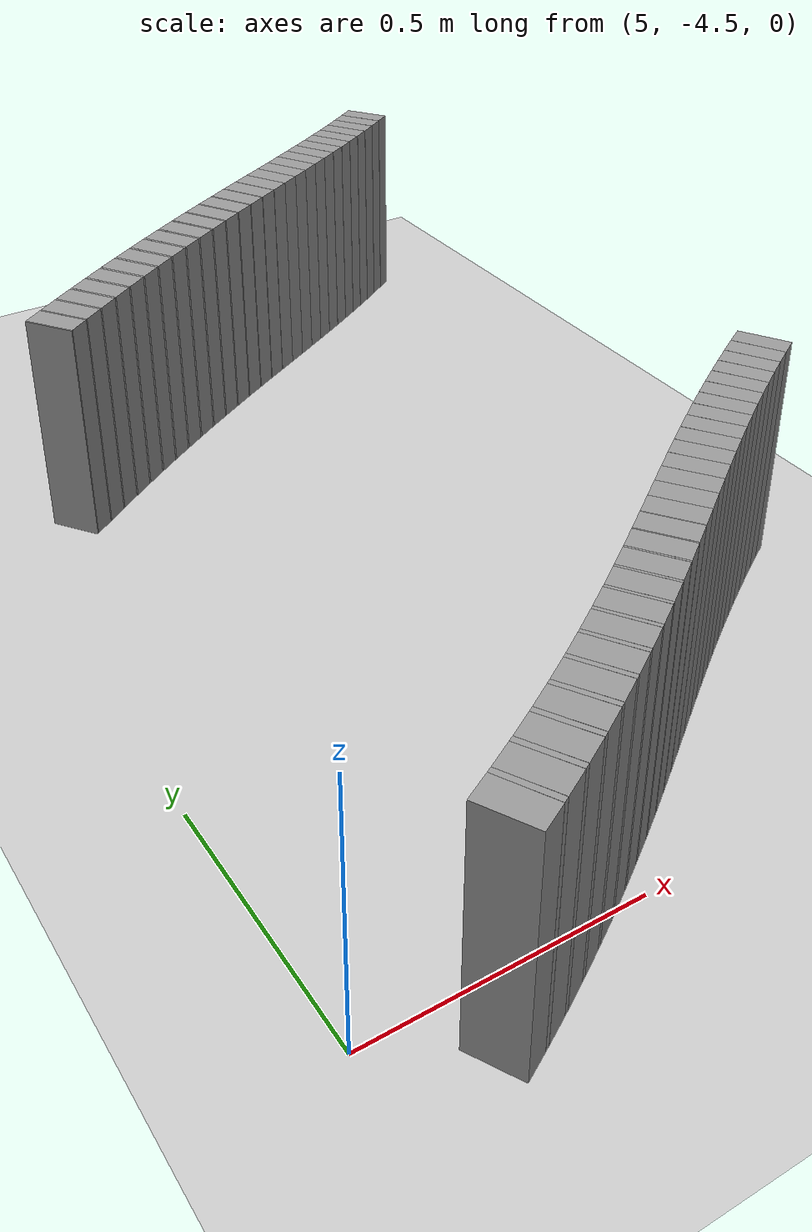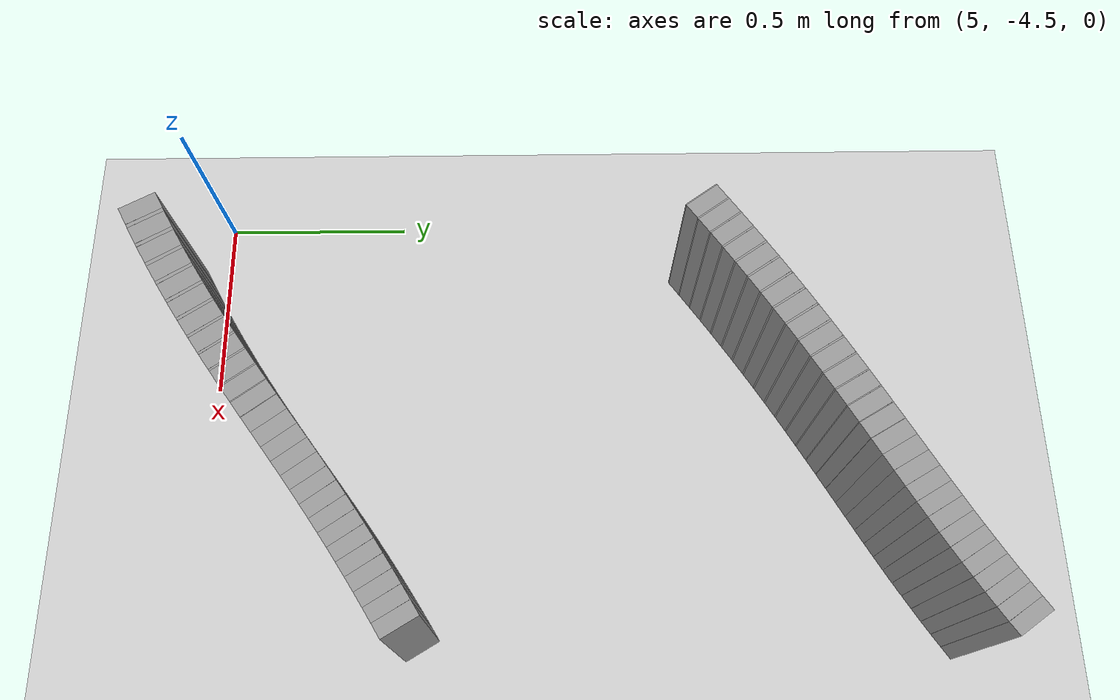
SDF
<sdf version="1.6">
 <world name="default">
  <include><uri>model://ground_plane</uri></include>
  <include><uri>model://sun</uri></include>
  <model name="wall_609_outward">
   <static>true</static>
   <link name="link">
    <collision name="collision">
     <geometry><box><size>0.002786222382187062 0.1 0.45</size></box></geometry>
    </collision>
    <visual name="visual">
     <geometry><box><size>0.002786222382187062 0.1 0.45</size></box></geometry>
     <material>
      <script><uri>file://media/materials/scripts/gazebo.material</uri><name>Gazebo/Gray</name></script>
     </material>
    </visual>
   </link>
   <pose>5.148489608580732 -3.1809714530120807 0.225 0 0 0.6229016369766011</pose>
  </model>
  <model name="wall_610_outward">
   <static>true</static>
   <link name="link">
    <collision name="collision">
     <geometry><box><size>0.045386893060723424 0.1 0.45</size></box></geometry>
    </collision>
    <visual name="visual">
     <geometry><box><size>0.045386893060723424 0.1 0.45</size></box></geometry>
     <material>
      <script><uri>file://media/materials/scripts/gazebo.material</uri><name>Gazebo/Gray</name></script>
     </material>
    </visual>
   </link>
   <pose>5.168083137573724 -3.166962323344757 0.225 0 0 0.6205797829050987</pose>
  </model>
  <model name="wall_611_outward">
   <static>true</static>
   <link name="link">
    <collision name="collision">
     <geometry><box><size>0.0035250302114483143 0.1 0.45</size></box></geometry>
    </collision>
    <visual name="visual">
     <geometry><box><size>0.0035250302114483143 0.1 0.45</size></box></geometry>
     <material>
      <script><uri>file://media/materials/scripts/gazebo.material</uri><name>Gazebo/Gray</name></script>
     </material>
    </visual>
   </link>
   <pose>5.18798208048395 -3.1527452285128454 0.225 0 0 0.6176422535041844</pose>
  </model>
  <model name="wall_612_outward">
   <static>true</static>
   <link name="link">
    <collision name="collision">
     <geometry><box><size>0.0454875068571517 0.1 0.45</size></box></geometry>
    </collision>
    <visual name="visual">
     <geometry><box><size>0.0454875068571517 0.1 0.45</size></box></geometry>
     <material>
      <script><uri>file://media/materials/scripts/gazebo.material</uri><name>Gazebo/Gray</name></script>
     </material>
    </visual>
   </link>
   <pose>5.207999331840912 -3.138607813626077 0.225 0 0 0.6147047241032968</pose>
  </model>
  <model name="wall_613_outward">
   <static>true</static>
   <link name="link">
    <collision name="collision">
     <geometry><box><size>0.0041267038170452915 0.1 0.45</size></box></geometry>
    </collision>
    <visual name="visual">
     <geometry><box><size>0.0041267038170452915 0.1 0.45</size></box></geometry>
     <material>
      <script><uri>file://media/materials/scripts/gazebo.material</uri><name>Gazebo/Gray</name></script>
     </material>
    </visual>
   </link>
   <pose>5.228269424324882 -3.1243069300550266 0.225 0 0 0.6112657974774508</pose>
  </model>
  <model name="wall_614_outward">
   <static>true</static>
   <link name="link">
    <collision name="collision">
     <geometry><box><size>0.045596323416679956 0.1 0.45</size></box></geometry>
    </collision>
    <visual name="visual">
     <geometry><box><size>0.045596323416679956 0.1 0.45</size></box></geometry>
     <material>
      <script><uri>file://media/materials/scripts/gazebo.material</uri><name>Gazebo/Gray</name></script>
     </material>
    </visual>
   </link>
   <pose>5.248673954747375 -3.11010307701274 0.225 0 0 0.6078268708517336</pose>
  </model>
  <model name="wall_615_outward">
   <static>true</static>
   <link name="link">
    <collision name="collision">
     <geometry><box><size>0.004612768524125091 0.1 0.45</size></box></geometry>
    </collision>
    <visual name="visual">
     <geometry><box><size>0.004612768524125091 0.1 0.45</size></box></geometry>
     <material>
      <script><uri>file://media/materials/scripts/gazebo.material</uri><name>Gazebo/Gray</name></script>
     </material>
    </visual>
   </link>
   <pose>5.2692870995730825 -3.0957735371798316 0.225 0 0 0.6039828876150469</pose>
  </model>
  <model name="wall_616_outward">
   <static>true</static>
   <link name="link">
    <collision name="collision">
     <geometry><box><size>0.04570440972219253 0.1 0.45</size></box></geometry>
    </collision>
    <visual name="visual">
     <geometry><box><size>0.04570440972219253 0.1 0.45</size></box></geometry>
     <material>
      <script><uri>file://media/materials/scripts/gazebo.material</uri><name>Gazebo/Gray</name></script>
     </material>
    </visual>
   </link>
   <pose>5.290044384757478 -3.0815577382347037 0.225 0 0 0.6001389043783746</pose>
  </model>
  <model name="wall_617_outward">
   <static>true</static>
   <link name="link">
    <collision name="collision">
     <geometry><box><size>0.004962508998697054 0.1 0.45</size></box></geometry>
    </collision>
    <visual name="visual">
     <geometry><box><size>0.004962508998697054 0.1 0.45</size></box></geometry>
     <material>
      <script><uri>file://media/materials/scripts/gazebo.material</uri><name>Gazebo/Gray</name></script>
     </material>
    </visual>
   </link>
   <pose>5.310956781364114 -3.067258966901993 0.225 0 0 0.5960034684256041</pose>
  </model>
  <model name="wall_618_outward">
   <static>true</static>
   <link name="link">
    <collision name="collision">
     <geometry><box><size>0.045801462063626966 0.1 0.45</size></box></geometry>
    </collision>
    <visual name="visual">
     <geometry><box><size>0.045801462063626966 0.1 0.45</size></box></geometry>
     <material>
      <script><uri>file://media/materials/scripts/gazebo.material</uri><name>Gazebo/Gray</name></script>
     </material>
    </visual>
   </link>
   <pose>5.332015546997569 -3.053089541799639 0.225 0 0 0.5918680324727241</pose>
  </model>
  <model name="wall_619_outward">
   <static>true</static>
   <link name="link">
    <collision name="collision">
     <geometry><box><size>0.005193770100478748 0.1 0.45</size></box></geometry>
    </collision>
    <visual name="visual">
     <geometry><box><size>0.005193770100478748 0.1 0.45</size></box></geometry>
     <material>
      <script><uri>file://media/materials/scripts/gazebo.material</uri><name>Gazebo/Gray</name></script>
     </material>
    </visual>
   </link>
   <pose>5.353182267358065 -3.038873450178092 0.225 0 0 0.5875398772091095</pose>
  </model>
  <model name="wall_620_outward">
   <static>true</static>
   <link name="link">
    <collision name="collision">
     <geometry><box><size>0.04587888654927647 0.1 0.45</size></box></geometry>
    </collision>
    <visual name="visual">
     <geometry><box><size>0.04587888654927647 0.1 0.45</size></box></geometry>
     <material>
      <script><uri>file://media/materials/scripts/gazebo.material</uri><name>Gazebo/Gray</name></script>
     </material>
    </visual>
   </link>
   <pose>5.374491185540359 -3.0248010319681002 0.225 0 0 0.5832117219456197</pose>
  </model>
  <model name="wall_621_outward">
   <static>true</static>
   <link name="link">
    <collision name="collision">
     <geometry><box><size>0.005316210794989774 0.1 0.45</size></box></geometry>
    </collision>
    <visual name="visual">
     <geometry><box><size>0.005316210794989774 0.1 0.45</size></box></geometry>
     <material>
      <script><uri>file://media/materials/scripts/gazebo.material</uri><name>Gazebo/Gray</name></script>
     </material>
    </visual>
   </link>
   <pose>5.395863877612497 -3.010714111265769 0.225 0 0 0.5787815317915165</pose>
  </model>
  <model name="wall_622_outward">
   <static>true</static>
   <link name="link">
    <collision name="collision">
     <geometry><box><size>0.045928933526055156 0.1 0.45</size></box></geometry>
    </collision>
    <visual name="visual">
     <geometry><box><size>0.045928933526055156 0.1 0.45</size></box></geometry>
     <material>
      <script><uri>file://media/materials/scripts/gazebo.material</uri><name>Gazebo/Gray</name></script>
     </material>
    </visual>
   </link>
   <pose>5.417368757490957 -2.996783743449709 0.225 0 0 0.5743513416374817</pose>
  </model>
  <model name="wall_623_outward">
   <static>true</static>
   <link name="link">
    <collision name="collision">
     <geometry><box><size>0.005313584616146912 0.1 0.45</size></box></geometry>
    </collision>
    <visual name="visual">
     <geometry><box><size>0.005313584616146912 0.1 0.45</size></box></geometry>
     <material>
      <script><uri>file://media/materials/scripts/gazebo.material</uri><name>Gazebo/Gray</name></script>
     </material>
    </visual>
   </link>
   <pose>5.438885324121731 -2.98287385198561 0.225 0 0 0.5699233399873327</pose>
  </model>
  <model name="wall_624_outward">
   <static>true</static>
   <link name="link">
    <collision name="collision">
     <geometry><box><size>0.04594592187868474 0.1 0.45</size></box></geometry>
    </collision>
    <visual name="visual">
     <geometry><box><size>0.04594592187868474 0.1 0.45</size></box></geometry>
     <material>
      <script><uri>file://media/materials/scripts/gazebo.material</uri><name>Gazebo/Gray</name></script>
     </material>
    </visual>
   </link>
   <pose>5.460518795899653 -2.969130637163528 0.225 0 0 0.5654953383370377</pose>
  </model>
  <model name="wall_625_outward">
   <static>true</static>
   <link name="link">
    <collision name="collision">
     <geometry><box><size>0.005195536897226923 0.1 0.45</size></box></geometry>
    </collision>
    <visual name="visual">
     <geometry><box><size>0.005195536897226923 0.1 0.45</size></box></geometry>
     <material>
      <script><uri>file://media/materials/scripts/gazebo.material</uri><name>Gazebo/Gray</name></script>
     </material>
    </visual>
   </link>
   <pose>5.482114764279942 -2.9554384776392277 0.225 0 0 0.561165710729041</pose>
  </model>
  <model name="wall_626_outward">
   <static>true</static>
   <link name="link">
    <collision name="collision">
     <geometry><box><size>0.045926667488566 0.1 0.45</size></box></geometry>
    </collision>
    <visual name="visual">
     <geometry><box><size>0.045926667488566 0.1 0.45</size></box></geometry>
     <material>
      <script><uri>file://media/materials/scripts/gazebo.material</uri><name>Gazebo/Gray</name></script>
     </material>
    </visual>
   </link>
   <pose>5.503808424098086 -2.9419198256809747 0.225 0 0 0.5568360831210868</pose>
  </model>
  <model name="wall_627_outward">
   <static>true</static>
   <link name="link">
    <collision name="collision">
     <geometry><box><size>0.004967714152939522 0.1 0.45</size></box></geometry>
    </collision>
    <visual name="visual">
     <geometry><box><size>0.004967714152939522 0.1 0.45</size></box></geometry>
     <material>
      <script><uri>file://media/materials/scripts/gazebo.material</uri><name>Gazebo/Gray</name></script>
     </material>
    </visual>
   </link>
   <pose>5.525416762186893 -2.9284796520134364 0.225 0 0 0.5526963095025933</pose>
  </model>
  <model name="wall_628_outward">
   <static>true</static>
   <link name="link">
    <collision name="collision">
     <geometry><box><size>0.04586814438037554 0.1 0.45</size></box></geometry>
    </collision>
    <visual name="visual">
     <geometry><box><size>0.04586814438037554 0.1 0.45</size></box></geometry>
     <material>
      <script><uri>file://media/materials/scripts/gazebo.material</uri><name>Gazebo/Gray</name></script>
     </material>
    </visual>
   </link>
   <pose>5.547099944857553 -2.915216555043755 0.225 0 0 0.5485565358841068</pose>
  </model>
  <model name="wall_629_outward">
   <static>true</static>
   <link name="link">
    <collision name="collision">
     <geometry><box><size>0.004596608474900366 0.1 0.45</size></box></geometry>
    </collision>
    <visual name="visual">
     <geometry><box><size>0.004596608474900366 0.1 0.45</size></box></geometry>
     <material>
      <script><uri>file://media/materials/scripts/gazebo.material</uri><name>Gazebo/Gray</name></script>
     </material>
    </visual>
   </link>
   <pose>5.568634755765286 -2.9020664993040794 0.225 0 0 0.5447260194543405</pose>
  </model>
  <model name="wall_630_outward">
   <static>true</static>
   <link name="link">
    <collision name="collision">
     <geometry><box><size>0.04577352844234651 0.1 0.45</size></box></geometry>
    </collision>
    <visual name="visual">
     <geometry><box><size>0.04577352844234651 0.1 0.45</size></box></geometry>
     <material>
      <script><uri>file://media/materials/scripts/gazebo.material</uri><name>Gazebo/Gray</name></script>
     </material>
    </visual>
   </link>
   <pose>5.590220055998974 -2.8890910719398315 0.225 0 0 0.5408955030244137</pose>
  </model>
  <model name="wall_631_outward">
   <static>true</static>
   <link name="link">
    <collision name="collision">
     <geometry><box><size>0.004119102942566044 0.1 0.45</size></box></geometry>
    </collision>
    <visual name="visual">
     <geometry><box><size>0.004119102942566044 0.1 0.45</size></box></geometry>
     <material>
      <script><uri>file://media/materials/scripts/gazebo.material</uri><name>Gazebo/Gray</name></script>
     </material>
    </visual>
   </link>
   <pose>5.611608863173424 -2.8762521841808404 0.225 0 0 0.5374629104981434</pose>
  </model>
  <model name="wall_632_outward">
   <static>true</static>
   <link name="link">
    <collision name="collision">
     <geometry><box><size>0.04564586670639704 0.1 0.45</size></box></geometry>
    </collision>
    <visual name="visual">
     <geometry><box><size>0.04564586670639704 0.1 0.45</size></box></geometry>
     <material>
      <script><uri>file://media/materials/scripts/gazebo.material</uri><name>Gazebo/Gray</name></script>
     </material>
    </visual>
   </link>
   <pose>5.633023166804809 -2.8635807558012747 0.225 0 0 0.5340303179717435</pose>
  </model>
  <model name="wall_633_outward">
   <static>true</static>
   <link name="link">
    <collision name="collision">
     <geometry><box><size>0.0035080934543316954 0.1 0.45</size></box></geometry>
    </collision>
    <visual name="visual">
     <geometry><box><size>0.0035080934543316954 0.1 0.45</size></box></geometry>
     <material>
      <script><uri>file://media/materials/scripts/gazebo.material</uri><name>Gazebo/Gray</name></script>
     </material>
    </visual>
   </link>
   <pose>5.654180715918747 -2.8510753280504852 0.225 0 0 0.531106902595643</pose>
  </model>
  <model name="wall_634_outward">
   <static>true</static>
   <link name="link">
    <collision name="collision">
     <geometry><box><size>0.0454936271999371 0.1 0.45</size></box></geometry>
    </collision>
    <visual name="visual">
     <geometry><box><size>0.0454936271999371 0.1 0.45</size></box></geometry>
     <material>
      <script><uri>file://media/materials/scripts/gazebo.material</uri><name>Gazebo/Gray</name></script>
     </material>
    </visual>
   </link>
   <pose>5.675340105176998 -2.8387233216548884 0.225 0 0 0.528183487219686</pose>
  </model>
  <model name="wall_635_outward">
   <static>true</static>
   <link name="link">
    <collision name="collision">
     <geometry><box><size>0.0027815332326502793 0.1 0.45</size></box></geometry>
    </collision>
    <visual name="visual">
     <geometry><box><size>0.0027815332326502793 0.1 0.45</size></box></geometry>
     <material>
      <script><uri>file://media/materials/scripts/gazebo.material</uri><name>Gazebo/Gray</name></script>
     </material>
    </visual>
   </link>
   <pose>5.696189932823531 -2.8265616073088626 0.225 0 0 0.5258655407835692</pose>
  </model>
  <model name="wall_636_outward">
   <static>true</static>
   <link name="link">
    <collision name="collision">
     <geometry><box><size>0.045325452277628846 0.1 0.45</size></box></geometry>
    </collision>
    <visual name="visual">
     <geometry><box><size>0.045325452277628846 0.1 0.45</size></box></geometry>
     <material>
      <script><uri>file://media/materials/scripts/gazebo.material</uri><name>Gazebo/Gray</name></script>
     </material>
    </visual>
   </link>
   <pose>5.717019869163196 -2.8145331370627433 0.225 0 0 0.5235475943472571</pose>
  </model>
  <model name="wall_637_outward">
   <static>true</static>
   <link name="link">
    <collision name="collision">
     <geometry><box><size>0.0019534767775117117 0.1 0.45</size></box></geometry>
    </collision>
    <visual name="visual">
     <geometry><box><size>0.0019534767775117117 0.1 0.45</size></box></geometry>
     <material>
      <script><uri>file://media/materials/scripts/gazebo.material</uri><name>Gazebo/Gray</name></script>
     </material>
    </visual>
   </link>
   <pose>5.737493644721379 -2.8027158303102278 0.225 0 0 0.5219196963136035</pose>
  </model>
  <model name="wall_638_outward">
   <static>true</static>
   <link name="link">
    <collision name="collision">
     <geometry><box><size>0.04515301951596668 0.1 0.45</size></box></geometry>
    </collision>
    <visual name="visual">
     <geometry><box><size>0.04515301951596668 0.1 0.45</size></box></geometry>
     <material>
      <script><uri>file://media/materials/scripts/gazebo.material</uri><name>Gazebo/Gray</name></script>
     </material>
    </visual>
   </link>
   <pose>5.757929397800433 -2.7910053462930478 0.225 0 0 0.5202917982800664</pose>
  </model>
  <model name="wall_639_outward">
   <static>true</static>
   <link name="link">
    <collision name="collision">
     <geometry><box><size>0.001045100202071506 0.1 0.45</size></box></geometry>
    </collision>
    <visual name="visual">
     <geometry><box><size>0.001045100202071506 0.1 0.45</size></box></geometry>
     <material>
      <script><uri>file://media/materials/scripts/gazebo.material</uri><name>Gazebo/Gray</name></script>
     </material>
    </visual>
   </link>
   <pose>5.777972081093258 -2.7795224283779096 0.225 0 0 0.5194208813350784</pose>
  </model>
  <model name="wall_640_outward">
   <static>true</static>
   <link name="link">
    <collision name="collision">
     <geometry><box><size>0.0449885671912572 0.1 0.45</size></box></geometry>
    </collision>
    <visual name="visual">
     <geometry><box><size>0.0449885671912572 0.1 0.45</size></box></geometry>
     <material>
      <script><uri>file://media/materials/scripts/gazebo.material</uri><name>Gazebo/Gray</name></script>
     </material>
    </visual>
   </link>
   <pose>5.7979628675856265 -2.7681144013828165 0.225 0 0 0.5185499643897508</pose>
  </model>
  <model name="wall_641_outward">
   <static>true</static>
   <link name="link">
    <collision name="collision">
     <geometry><box><size>0.04450666516712976 0.1 0.45</size></box></geometry>
    </collision>
    <visual name="visual">
     <geometry><box><size>0.04450666516712976 0.1 0.45</size></box></geometry>
     <material>
      <script><uri>file://media/materials/scripts/gazebo.material</uri><name>Gazebo/Gray</name></script>
     </material>
    </visual>
   </link>
   <pose>5.8368297413926085 -2.7459397478266325 0.225 0 0 0.5183835917284237</pose>
  </model>
  <model name="wall_642_outward">
   <static>true</static>
   <link name="link">
    <collision name="collision">
     <geometry><box><size>0.04338665943878563 0.1 0.45</size></box></geometry>
    </collision>
    <visual name="visual">
     <geometry><box><size>0.04338665943878563 0.1 0.45</size></box></geometry>
     <material>
      <script><uri>file://media/materials/scripts/gazebo.material</uri><name>Gazebo/Gray</name></script>
     </material>
    </visual>
   </link>
   <pose>5.874987090106169 -2.724137801918661 0.225 0 0 0.5198381336484725</pose>
  </model>
  <model name="wall_643_outward">
   <static>true</static>
   <link name="link">
    <collision name="collision">
     <geometry><box><size>0.04239454451689412 0.1 0.45</size></box></geometry>
    </collision>
    <visual name="visual">
     <geometry><box><size>0.04239454451689412 0.1 0.45</size></box></geometry>
     <material>
      <script><uri>file://media/materials/scripts/gazebo.material</uri><name>Gazebo/Gray</name></script>
     </material>
    </visual>
   </link>
   <pose>5.912179993324076 -2.702776914590191 0.225 0 0 0.5228534021884752</pose>
  </model>
  <model name="wall_644_outward">
   <static>true</static>
   <link name="link">
    <collision name="collision">
     <geometry><box><size>0.041510741333740296 0.1 0.45</size></box></geometry>
    </collision>
    <visual name="visual">
     <geometry><box><size>0.041510741333740296 0.1 0.45</size></box></geometry>
     <material>
      <script><uri>file://media/materials/scripts/gazebo.material</uri><name>Gazebo/Gray</name></script>
     </material>
    </visual>
   </link>
   <pose>5.948480849192094 -2.6817468598689764 0.225 0 0 0.5273536477016316</pose>
  </model>
  <model name="wall_645_outward">
   <static>true</static>
   <link name="link">
    <collision name="collision">
     <geometry><box><size>0.04075163857102676 0.1 0.45</size></box></geometry>
    </collision>
    <visual name="visual">
     <geometry><box><size>0.04075163857102676 0.1 0.45</size></box></geometry>
     <material>
      <script><uri>file://media/materials/scripts/gazebo.material</uri><name>Gazebo/Gray</name></script>
     </material>
    </visual>
   </link>
   <pose>5.983963843487487 -2.6609449975293167 0.225 0 0 0.5331941446351677</pose>
  </model>
  <model name="wall_646_outward">
   <static>true</static>
   <link name="link">
    <collision name="collision">
     <geometry><box><size>0.040134041067728055 0.1 0.45</size></box></geometry>
    </collision>
    <visual name="visual">
     <geometry><box><size>0.040134041067728055 0.1 0.45</size></box></geometry>
     <material>
      <script><uri>file://media/materials/scripts/gazebo.material</uri><name>Gazebo/Gray</name></script>
     </material>
    </visual>
   </link>
   <pose>6.018720337627959 -2.6402667709291077 0.225 0 0 0.5402493492938206</pose>
  </model>
  <model name="wall_647_outward">
   <static>true</static>
   <link name="link">
    <collision name="collision">
     <geometry><box><size>0.03965858636891354 0.1 0.45</size></box></geometry>
    </collision>
    <visual name="visual">
     <geometry><box><size>0.03965858636891354 0.1 0.45</size></box></geometry>
     <material>
      <script><uri>file://media/materials/scripts/gazebo.material</uri><name>Gazebo/Gray</name></script>
     </material>
    </visual>
   </link>
   <pose>6.052851752739666 -2.619609171305882 0.225 0 0 0.5483216170945246</pose>
  </model>
  <model name="wall_648_outward">
   <static>true</static>
   <link name="link">
    <collision name="collision">
     <geometry><box><size>0.03929869464453057 0.1 0.45</size></box></geometry>
    </collision>
    <visual name="visual">
     <geometry><box><size>0.03929869464453057 0.1 0.45</size></box></geometry>
     <material>
      <script><uri>file://media/materials/scripts/gazebo.material</uri><name>Gazebo/Gray</name></script>
     </material>
    </visual>
   </link>
   <pose>6.086450503223709 -2.598881030814555 0.225 0 0 0.5572721331504589</pose>
  </model>
  <model name="wall_649_outward">
   <static>true</static>
   <link name="link">
    <collision name="collision">
     <geometry><box><size>0.03903789872213498 0.1 0.45</size></box></geometry>
    </collision>
    <visual name="visual">
     <geometry><box><size>0.03903789872213498 0.1 0.45</size></box></geometry>
     <material>
      <script><uri>file://media/materials/scripts/gazebo.material</uri><name>Gazebo/Gray</name></script>
     </material>
    </visual>
   </link>
   <pose>6.119591643822419 -2.5780055884535757 0.225 0 0 0.5669835014043547</pose>
  </model>
  <model name="wall_650_outward">
   <static>true</static>
   <link name="link">
    <collision name="collision">
     <geometry><box><size>0.03885725483345488 0.1 0.45</size></box></geometry>
    </collision>
    <visual name="visual">
     <geometry><box><size>0.03885725483345488 0.1 0.45</size></box></geometry>
     <material>
      <script><uri>file://media/materials/scripts/gazebo.material</uri><name>Gazebo/Gray</name></script>
     </material>
    </visual>
   </link>
   <pose>6.152335739529336 -2.5569177459188914 0.225 0 0 0.5773598523273608</pose>
  </model>
  <model name="wall_651_outward">
   <static>true</static>
   <link name="link">
    <collision name="collision">
     <geometry><box><size>0.03873868457838711 0.1 0.45</size></box></geometry>
    </collision>
    <visual name="visual">
     <geometry><box><size>0.03873868457838711 0.1 0.45</size></box></geometry>
     <material>
      <script><uri>file://media/materials/scripts/gazebo.material</uri><name>Gazebo/Gray</name></script>
     </material>
    </visual>
   </link>
   <pose>6.18472772500787 -2.5355636751942194 0.225 0 0 0.5883428461546087</pose>
  </model>
  <model name="wall_652_outward">
   <static>true</static>
   <link name="link">
    <collision name="collision">
     <geometry><box><size>0.03866482546721617 0.1 0.45</size></box></geometry>
    </collision>
    <visual name="visual">
     <geometry><box><size>0.03866482546721617 0.1 0.45</size></box></geometry>
     <material>
      <script><uri>file://media/materials/scripts/gazebo.material</uri><name>Gazebo/Gray</name></script>
     </material>
    </visual>
   </link>
   <pose>6.216797160446632 -2.5138997156864855 0.225 0 0 0.5998995616508439</pose>
  </model>
  <model name="wall_837_inward">
   <static>true</static>
   <link name="link">
    <collision name="collision">
     <geometry><box><size>0.05165552420495809 0.1 0.45</size></box></geometry>
    </collision>
    <visual name="visual">
     <geometry><box><size>0.05165552420495809 0.1 0.45</size></box></geometry>
     <material>
      <script><uri>file://media/materials/scripts/gazebo.material</uri><name>Gazebo/Gray</name></script>
     </material>
    </visual>
   </link>
   <pose>5.1720938765679785 -4.602472532737916 0.225 0 0 0.49032783140802194</pose>
  </model>
  <model name="wall_838_inward">
   <static>true</static>
   <link name="link">
    <collision name="collision">
     <geometry><box><size>0.010569314616021076 0.1 0.45</size></box></geometry>
    </collision>
    <visual name="visual">
     <geometry><box><size>0.010569314616021076 0.1 0.45</size></box></geometry>
     <material>
      <script><uri>file://media/materials/scripts/gazebo.material</uri><name>Gazebo/Gray</name></script>
     </material>
    </visual>
   </link>
   <pose>5.1995184847879745 -4.587780258685183 0.225 0 0 0.49913570747149755</pose>
  </model>
  <model name="wall_839_inward">
   <static>true</static>
   <link name="link">
    <collision name="collision">
     <geometry><box><size>0.050974735439599704 0.1 0.45</size></box></geometry>
    </collision>
    <visual name="visual">
     <geometry><box><size>0.050974735439599704 0.1 0.45</size></box></geometry>
     <material>
      <script><uri>file://media/materials/scripts/gazebo.material</uri><name>Gazebo/Gray</name></script>
     </material>
    </visual>
   </link>
   <pose>5.226427895726052 -4.572854084422584 0.225 0 0 0.5079435835349762</pose>
  </model>
  <model name="wall_840_inward">
   <static>true</static>
   <link name="link">
    <collision name="collision">
     <geometry><box><size>0.010328629217158797 0.1 0.45</size></box></geometry>
    </collision>
    <visual name="visual">
     <geometry><box><size>0.010328629217158797 0.1 0.45</size></box></geometry>
     <material>
      <script><uri>file://media/materials/scripts/gazebo.material</uri><name>Gazebo/Gray</name></script>
     </material>
    </visual>
   </link>
   <pose>5.25318791071412 -4.557906928306399 0.225 0 0 0.5165508808283227</pose>
  </model>
  <model name="wall_841_inward">
   <static>true</static>
   <link name="link">
    <collision name="collision">
     <geometry><box><size>0.05024340332252518 0.1 0.45</size></box></geometry>
    </collision>
    <visual name="visual">
     <geometry><box><size>0.05024340332252518 0.1 0.45</size></box></geometry>
     <material>
      <script><uri>file://media/materials/scripts/gazebo.material</uri><name>Gazebo/Gray</name></script>
     </material>
    </visual>
   </link>
   <pose>5.279414843859938 -4.542761594116335 0.225 0 0 0.5251581781216185</pose>
  </model>
  <model name="wall_842_inward">
   <static>true</static>
   <link name="link">
    <collision name="collision">
     <geometry><box><size>0.009969740256993587 0.1 0.45</size></box></geometry>
    </collision>
    <visual name="visual">
     <geometry><box><size>0.009969740256993587 0.1 0.45</size></box></geometry>
     <material>
      <script><uri>file://media/materials/scripts/gazebo.material</uri><name>Gazebo/Gray</name></script>
     </material>
    </visual>
   </link>
   <pose>5.305443481821023 -4.5276319203985675 0.225 0 0 0.5334663905830903</pose>
  </model>
  <model name="wall_843_inward">
   <static>true</static>
   <link name="link">
    <collision name="collision">
     <geometry><box><size>0.0494917085051484 0.1 0.45</size></box></geometry>
    </collision>
    <visual name="visual">
     <geometry><box><size>0.0494917085051484 0.1 0.45</size></box></geometry>
     <material>
      <script><uri>file://media/materials/scripts/gazebo.material</uri><name>Gazebo/Gray</name></script>
     </material>
    </visual>
   </link>
   <pose>5.330937824632532 -4.512336628896291 0.225 0 0 0.541774603044598</pose>
  </model>
  <model name="wall_844_inward">
   <static>true</static>
   <link name="link">
    <collision name="collision">
     <geometry><box><size>0.009507662413468997 0.1 0.45</size></box></geometry>
    </collision>
    <visual name="visual">
     <geometry><box><size>0.009507662413468997 0.1 0.45</size></box></geometry>
     <material>
      <script><uri>file://media/materials/scripts/gazebo.material</uri><name>Gazebo/Gray</name></script>
     </material>
    </visual>
   </link>
   <pose>5.356193455983945 -4.49709270740438 0.225 0 0 0.5496977379527429</pose>
  </model>
  <model name="wall_845_inward">
   <static>true</static>
   <link name="link">
    <collision name="collision">
     <geometry><box><size>0.04874637475375546 0.1 0.45</size></box></geometry>
    </collision>
    <visual name="visual">
     <geometry><box><size>0.04874637475375546 0.1 0.45</size></box></geometry>
     <material>
      <script><uri>file://media/materials/scripts/gazebo.material</uri><name>Gazebo/Gray</name></script>
     </material>
    </visual>
   </link>
   <pose>5.380928015478874 -4.4817116312200875 0.225 0 0 0.5576208728609496</pose>
  </model>
  <model name="wall_846_inward">
   <static>true</static>
   <link name="link">
    <collision name="collision">
     <geometry><box><size>0.008892953027920609 0.1 0.45</size></box></geometry>
    </collision>
    <visual name="visual">
     <geometry><box><size>0.008892953027920609 0.1 0.45</size></box></geometry>
     <material>
      <script><uri>file://media/materials/scripts/gazebo.material</uri><name>Gazebo/Gray</name></script>
     </material>
    </visual>
   </link>
   <pose>5.4053644342529275 -4.466433263759262 0.225 0 0 0.5650317348858096</pose>
  </model>
  <model name="wall_847_inward">
   <static>true</static>
   <link name="link">
    <collision name="collision">
     <geometry><box><size>0.04803716990839476 0.1 0.45</size></box></geometry>
    </collision>
    <visual name="visual">
     <geometry><box><size>0.04803716990839476 0.1 0.45</size></box></geometry>
     <material>
      <script><uri>file://media/materials/scripts/gazebo.material</uri><name>Gazebo/Gray</name></script>
     </material>
    </visual>
   </link>
   <pose>5.429309352895986 -4.451041878826569 0.225 0 0 0.5724425969107975</pose>
  </model>
  <model name="wall_848_inward">
   <static>true</static>
   <link name="link">
    <collision name="collision">
     <geometry><box><size>0.008135991551997485 0.1 0.45</size></box></geometry>
    </collision>
    <visual name="visual">
     <geometry><box><size>0.008135991551997485 0.1 0.45</size></box></geometry>
     <material>
      <script><uri>file://media/materials/scripts/gazebo.material</uri><name>Gazebo/Gray</name></script>
     </material>
    </visual>
   </link>
   <pose>5.45290336222574 -4.435804613672957 0.225 0 0 0.5792226418159293</pose>
  </model>
  <model name="wall_849_inward">
   <static>true</static>
   <link name="link">
    <collision name="collision">
     <geometry><box><size>0.04738639283413973 0.1 0.45</size></box></geometry>
    </collision>
    <visual name="visual">
     <geometry><box><size>0.04738639283413973 0.1 0.45</size></box></geometry>
     <material>
      <script><uri>file://media/materials/scripts/gazebo.material</uri><name>Gazebo/Gray</name></script>
     </material>
    </visual>
   </link>
   <pose>5.476047996493423 -4.420474732201013 0.225 0 0 0.5860026867211898</pose>
  </model>
  <model name="wall_850_inward">
   <static>true</static>
   <link name="link">
    <collision name="collision">
     <geometry><box><size>0.007243485312702678 0.1 0.45</size></box></geometry>
    </collision>
    <visual name="visual">
     <geometry><box><size>0.007243485312702678 0.1 0.45</size></box></geometry>
     <material>
      <script><uri>file://media/materials/scripts/gazebo.material</uri><name>Gazebo/Gray</name></script>
     </material>
    </visual>
   </link>
   <pose>5.498793510802339 -4.405350435563891 0.225 0 0 0.5920389611385739</pose>
  </model>
  <model name="wall_851_inward">
   <static>true</static>
   <link name="link">
    <collision name="collision">
     <geometry><box><size>0.0468125505683899 0.1 0.45</size></box></geometry>
    </collision>
    <visual name="visual">
     <geometry><box><size>0.0468125505683899 0.1 0.45</size></box></geometry>
     <material>
      <script><uri>file://media/materials/scripts/gazebo.material</uri><name>Gazebo/Gray</name></script>
     </material>
    </visual>
   </link>
   <pose>5.521142284185133 -4.390150337100321 0.225 0 0 0.5980752355560214</pose>
  </model>
  <model name="wall_852_inward">
   <static>true</static>
   <link name="link">
    <collision name="collision">
     <geometry><box><size>0.006186089133245585 0.1 0.45</size></box></geometry>
    </collision>
    <visual name="visual">
     <geometry><box><size>0.006186089133245585 0.1 0.45</size></box></geometry>
     <material>
      <script><uri>file://media/materials/scripts/gazebo.material</uri><name>Gazebo/Gray</name></script>
     </material>
    </visual>
   </link>
   <pose>5.543032863886905 -4.375216665450736 0.225 0 0 0.6032303326664535</pose>
  </model>
  <model name="wall_853_inward">
   <static>true</static>
   <link name="link">
    <collision name="collision">
     <geometry><box><size>0.04632818273394901 0.1 0.45</size></box></geometry>
    </collision>
    <visual name="visual">
     <geometry><box><size>0.04632818273394901 0.1 0.45</size></box></geometry>
     <material>
      <script><uri>file://media/materials/scripts/gazebo.material</uri><name>Gazebo/Gray</name></script>
     </material>
    </visual>
   </link>
   <pose>5.564587810846472 -4.3602226818248315 0.225 0 0 0.608385429776977</pose>
  </model>
  <model name="wall_854_inward">
   <static>true</static>
   <link name="link">
    <collision name="collision">
     <geometry><box><size>0.005051650537467409 0.1 0.45</size></box></geometry>
    </collision>
    <visual name="visual">
     <geometry><box><size>0.005051650537467409 0.1 0.45</size></box></geometry>
     <material>
      <script><uri>file://media/materials/scripts/gazebo.material</uri><name>Gazebo/Gray</name></script>
     </material>
    </visual>
   </link>
   <pose>5.585662138556889 -4.34553106886257 0.225 0 0 0.6125951509921599</pose>
  </model>
  <model name="wall_855_inward">
   <static>true</static>
   <link name="link">
    <collision name="collision">
     <geometry><box><size>0.04593778943449601 0.1 0.45</size></box></geometry>
    </collision>
    <visual name="visual">
     <geometry><box><size>0.04593778943449601 0.1 0.45</size></box></geometry>
     <material>
      <script><uri>file://media/materials/scripts/gazebo.material</uri><name>Gazebo/Gray</name></script>
     </material>
    </visual>
   </link>
   <pose>5.60646509859677 -4.3307927998797675 0.225 0 0 0.616804872207288</pose>
  </model>
  <model name="wall_856_inward">
   <static>true</static>
   <link name="link">
    <collision name="collision">
     <geometry><box><size>0.003828054239644449 0.1 0.45</size></box></geometry>
    </collision>
    <visual name="visual">
     <geometry><box><size>0.003828054239644449 0.1 0.45</size></box></geometry>
     <material>
      <script><uri>file://media/materials/scripts/gazebo.material</uri><name>Gazebo/Gray</name></script>
     </material>
    </visual>
   </link>
   <pose>5.626759324101419 -4.316394752688235 0.225 0 0 0.6199949228173807</pose>
  </model>
  <model name="wall_857_inward">
   <static>true</static>
   <link name="link">
    <collision name="collision">
     <geometry><box><size>0.04564282721523447 0.1 0.45</size></box></geometry>
    </collision>
    <visual name="visual">
     <geometry><box><size>0.04564282721523447 0.1 0.45</size></box></geometry>
     <material>
      <script><uri>file://media/materials/scripts/gazebo.material</uri><name>Gazebo/Gray</name></script>
     </material>
    </visual>
   </link>
   <pose>5.646848645049401 -4.30196350993802 0.225 0 0 0.6231849734277837</pose>
  </model>
  <model name="wall_858_inward">
   <static>true</static>
   <link name="link">
    <collision name="collision">
     <geometry><box><size>0.0025748791266508864 0.1 0.45</size></box></geometry>
    </collision>
    <visual name="visual">
     <geometry><box><size>0.0025748791266508864 0.1 0.45</size></box></geometry>
     <material>
      <script><uri>file://media/materials/scripts/gazebo.material</uri><name>Gazebo/Gray</name></script>
     </material>
    </visual>
   </link>
   <pose>5.666423991745438 -4.287890753716441 0.225 0 0 0.6253307076799316</pose>
  </model>
  <model name="wall_859_inward">
   <static>true</static>
   <link name="link">
    <collision name="collision">
     <geometry><box><size>0.04543610629984795 0.1 0.45</size></box></geometry>
    </collision>
    <visual name="visual">
     <geometry><box><size>0.04543610629984795 0.1 0.45</size></box></geometry>
     <material>
      <script><uri>file://media/materials/scripts/gazebo.material</uri><name>Gazebo/Gray</name></script>
     </material>
    </visual>
   </link>
   <pose>5.685858337832762 -4.2737992762246915 0.225 0 0 0.6274764419319881</pose>
  </model>
  <model name="wall_860_inward">
   <static>true</static>
   <link name="link">
    <collision name="collision">
     <geometry><box><size>0.0013432292170097318 0.1 0.45</size></box></geometry>
    </collision>
    <visual name="visual">
     <geometry><box><size>0.0013432292170097318 0.1 0.45</size></box></geometry>
     <material>
      <script><uri>file://media/materials/scripts/gazebo.material</uri><name>Gazebo/Gray</name></script>
     </material>
    </visual>
   </link>
   <pose>5.704792105242216 -4.260066505549514 0.225 0 0 0.6285957998466309</pose>
  </model>
  <model name="wall_861_inward">
   <static>true</static>
   <link name="link">
    <collision name="collision">
     <geometry><box><size>0.04547608523132583 0.1 0.45</size></box></geometry>
    </collision>
    <visual name="visual">
     <geometry><box><size>0.04547608523132583 0.1 0.45</size></box></geometry>
     <material>
      <script><uri>file://media/materials/scripts/gazebo.material</uri><name>Gazebo/Gray</name></script>
     </material>
    </visual>
   </link>
   <pose>5.723712115691357 -4.246280815983654 0.225 0 0 0.6297156525200099</pose>
  </model>
  <model name="wall_862_inward">
   <static>true</static>
   <link name="link">
    <collision name="collision">
     <geometry><box><size>0.04478726603852593 0.1 0.45</size></box></geometry>
    </collision>
    <visual name="visual">
     <geometry><box><size>0.04478726603852593 0.1 0.45</size></box></geometry>
     <material>
      <script><uri>file://media/materials/scripts/gazebo.material</uri><name>Gazebo/Gray</name></script>
     </material>
    </visual>
   </link>
   <pose>5.760183704372384 -4.219697149444829 0.225 0 0 0.6299890171882466</pose>
  </model>
  <model name="wall_863_inward">
   <static>true</static>
   <link name="link">
    <collision name="collision">
     <geometry><box><size>0.04382961586654621 0.1 0.45</size></box></geometry>
    </collision>
    <visual name="visual">
     <geometry><box><size>0.04382961586654621 0.1 0.45</size></box></geometry>
     <material>
      <script><uri>file://media/materials/scripts/gazebo.material</uri><name>Gazebo/Gray</name></script>
     </material>
    </visual>
   </link>
   <pose>5.796006606347573 -4.193621175203006 0.225 0 0 0.6284246045477394</pose>
  </model>
  <model name="wall_864_inward">
   <static>true</static>
   <link name="link">
    <collision name="collision">
     <geometry><box><size>0.04295347432266814 0.1 0.45</size></box></geometry>
    </collision>
    <visual name="visual">
     <geometry><box><size>0.04295347432266814 0.1 0.45</size></box></geometry>
     <material>
      <script><uri>file://media/materials/scripts/gazebo.material</uri><name>Gazebo/Gray</name></script>
     </material>
    </visual>
   </link>
   <pose>5.831148724882089 -4.168168221195485 0.225 0 0 0.6252234910477743</pose>
  </model>
  <model name="wall_865_inward">
   <static>true</static>
   <link name="link">
    <collision name="collision">
     <geometry><box><size>0.04223125540429982 0.1 0.45</size></box></geometry>
    </collision>
    <visual name="visual">
     <geometry><box><size>0.04223125540429982 0.1 0.45</size></box></geometry>
     <material>
      <script><uri>file://media/materials/scripts/gazebo.material</uri><name>Gazebo/Gray</name></script>
     </material>
    </visual>
   </link>
   <pose>5.8657411961145005 -4.143319464696547 0.225 0 0 0.6205797829051004</pose>
  </model>
  <model name="wall_866_inward">
   <static>true</static>
   <link name="link">
    <collision name="collision">
     <geometry><box><size>0.04166162003758015 0.1 0.45</size></box></geometry>
    </collision>
    <visual name="visual">
     <geometry><box><size>0.04166162003758015 0.1 0.45</size></box></geometry>
     <material>
      <script><uri>file://media/materials/scripts/gazebo.material</uri><name>Gazebo/Gray</name></script>
     </material>
    </visual>
   </link>
   <pose>5.899937234937157 -4.119027091733745 0.225 0 0 0.6147047241032711</pose>
  </model>
  <model name="wall_867_inward">
   <static>true</static>
   <link name="link">
    <collision name="collision">
     <geometry><box><size>0.04122655800516914 0.1 0.45</size></box></geometry>
    </collision>
    <visual name="visual">
     <geometry><box><size>0.04122655800516914 0.1 0.45</size></box></geometry>
     <material>
      <script><uri>file://media/materials/scripts/gazebo.material</uri><name>Gazebo/Gray</name></script>
     </material>
    </visual>
   </link>
   <pose>5.933876090614068 -4.095241670191633 0.225 0 0 0.607826870851753</pose>
  </model>
  <model name="wall_868_inward">
   <static>true</static>
   <link name="link">
    <collision name="collision">
     <geometry><box><size>0.0409167327037724 0.1 0.45</size></box></geometry>
    </collision>
    <visual name="visual">
     <geometry><box><size>0.0409167327037724 0.1 0.45</size></box></geometry>
     <material>
      <script><uri>file://media/materials/scripts/gazebo.material</uri><name>Gazebo/Gray</name></script>
     </material>
    </visual>
   </link>
   <pose>5.967680759388329 -4.071915729782418 0.225 0 0 0.6001389043783625</pose>
  </model>
  <model name="wall_869_inward">
   <static>true</static>
   <link name="link">
    <collision name="collision">
     <geometry><box><size>0.0407232769731364 0.1 0.45</size></box></geometry>
    </collision>
    <visual name="visual">
     <geometry><box><size>0.0407232769731364 0.1 0.45</size></box></geometry>
     <material>
      <script><uri>file://media/materials/scripts/gazebo.material</uri><name>Gazebo/Gray</name></script>
     </material>
    </visual>
   </link>
   <pose>6.0014622953654015 -4.049001713852236 0.225 0 0 0.5918680324727225</pose>
  </model>
  <model name="wall_870_inward">
   <static>true</static>
   <link name="link">
    <collision name="collision">
     <geometry><box><size>0.04062384569269057 0.1 0.45</size></box></geometry>
    </collision>
    <visual name="visual">
     <geometry><box><size>0.04062384569269057 0.1 0.45</size></box></geometry>
     <material>
      <script><uri>file://media/materials/scripts/gazebo.material</uri><name>Gazebo/Gray</name></script>
     </material>
    </visual>
   </link>
   <pose>6.0353147439254915 -4.026455775689833 0.225 0 0 0.5832117219456046</pose>
  </model>
  <model name="wall_871_inward">
   <static>true</static>
   <link name="link">
    <collision name="collision">
     <geometry><box><size>0.04061398368910918 0.1 0.45</size></box></geometry>
    </collision>
    <visual name="visual">
     <geometry><box><size>0.04061398368910918 0.1 0.45</size></box></geometry>
     <material>
      <script><uri>file://media/materials/scripts/gazebo.material</uri><name>Gazebo/Gray</name></script>
     </material>
    </visual>
   </link>
   <pose>6.069317701352848 -4.004237253343736 0.225 0 0 0.5743513416374942</pose>
  </model>
  <model name="wall_872_inward">
   <static>true</static>
   <link name="link">
    <collision name="collision">
     <geometry><box><size>0.04069131072705736 0.1 0.45</size></box></geometry>
    </collision>
    <visual name="visual">
     <geometry><box><size>0.04069131072705736 0.1 0.45</size></box></geometry>
     <material>
      <script><uri>file://media/materials/scripts/gazebo.material</uri><name>Gazebo/Gray</name></script>
     </material>
    </visual>
   </link>
   <pose>6.103544643132265 -3.98230276501831 0.225 0 0 0.5654953383370325</pose>
  </model>
  <model name="wall_873_inward">
   <static>true</static>
   <link name="link">
    <collision name="collision">
     <geometry><box><size>0.04084499633083788 0.1 0.45</size></box></geometry>
    </collision>
    <visual name="visual">
     <geometry><box><size>0.04084499633083788 0.1 0.45</size></box></geometry>
     <material>
      <script><uri>file://media/materials/scripts/gazebo.material</uri><name>Gazebo/Gray</name></script>
     </material>
    </visual>
   </link>
   <pose>6.138060255631309 -3.9606075194521697 0.225 0 0 0.5568360831210847</pose>
  </model>
  <model name="wall_874_inward">
   <static>true</static>
   <link name="link">
    <collision name="collision">
     <geometry><box><size>0.0410859449209757 0.1 0.45</size></box></geometry>
    </collision>
    <visual name="visual">
     <geometry><box><size>0.0410859449209757 0.1 0.45</size></box></geometry>
     <material>
      <script><uri>file://media/materials/scripts/gazebo.material</uri><name>Gazebo/Gray</name></script>
     </material>
    </visual>
   </link>
   <pose>6.172926426356604 -3.939101911742635 0.225 0 0 0.5485565358841146</pose>
  </model>
  <model name="wall_875_inward">
   <static>true</static>
   <link name="link">
    <collision name="collision">
     <geometry><box><size>0.04141564373859175 0.1 0.45</size></box></geometry>
    </collision>
    <visual name="visual">
     <geometry><box><size>0.04141564373859175 0.1 0.45</size></box></geometry>
     <material>
      <script><uri>file://media/materials/scripts/gazebo.material</uri><name>Gazebo/Gray</name></script>
     </material>
    </visual>
   </link>
   <pose>6.208207032525492 -3.917727115978197 0.225 0 0 0.5408955030244096</pose>
  </model>
 </world>
</sdf>
